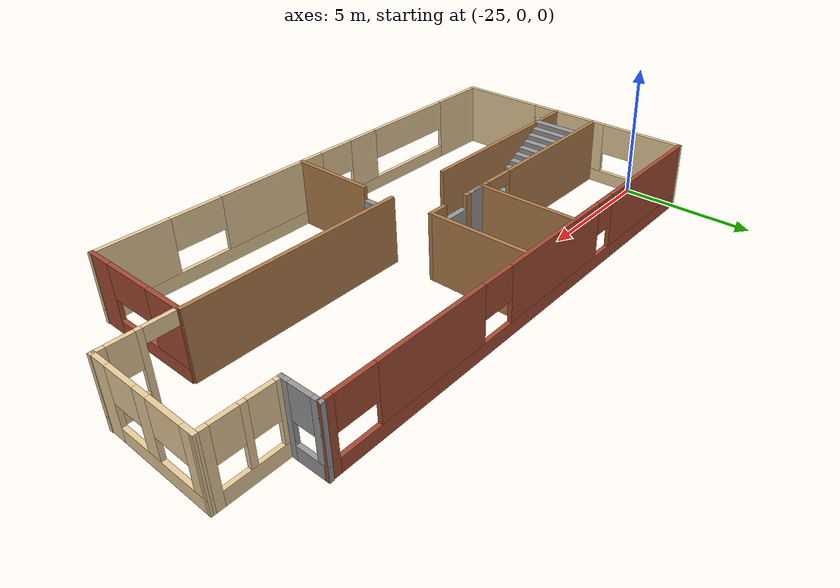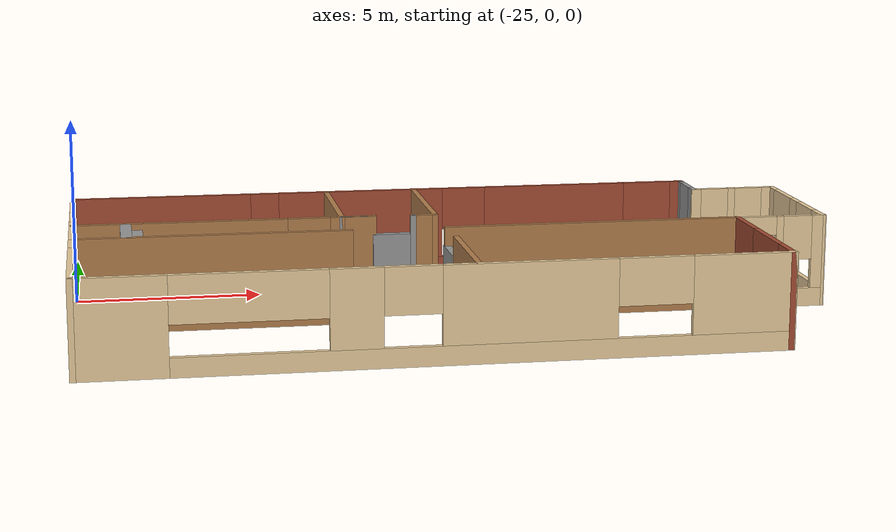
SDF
<?xml version='1.0'?>
<sdf version='1.6'>
  <model name='MyHouse'>
    <pose frame=''>-15.0547 -3.02519 0 0 -0 0</pose>
    <link name='Door_2'>
      <collision name='Door_2_Collision'>
        <geometry>
          <box>
            <size>1.24381 0.2 2</size>
          </box>
        </geometry>
        <pose frame=''>0 0 1 0 -0 0</pose>
      </collision>
      <visual name='Door_2_Visual'>
        <pose frame=''>0 0 1 0 -0 0</pose>
        <geometry>
          <box>
            <size>1.24381 0.2 2</size>
          </box>
        </geometry>
        <material>
          <script>
            <uri>file://media/materials/scripts/gazebo.material</uri>
            <name>Gazebo/Grey</name>
          </script>
        </material>
      </visual>
      <pose frame=''>-0.285292 -1.10145 0 0 0 -1.5689</pose>
    </link>
    <link name='Door_3'>
      <collision name='Door_3_Collision'>
        <geometry>
          <box>
            <size>1.03225 0.2 2</size>
          </box>
        </geometry>
        <pose frame=''>0 0 1 0 -0 0</pose>
      </collision>
      <visual name='Door_3_Visual'>
        <pose frame=''>0 0 1 0 -0 0</pose>
        <geometry>
          <box>
            <size>1.03225 0.2 2</size>
          </box>
        </geometry>
        <material>
          <script>
            <uri>file://media/materials/scripts/gazebo.material</uri>
            <name>Gazebo/Grey</name>
          </script>
        </material>
      </visual>
      <pose frame=''>-1.50547 1.19824 0 0 -0 0</pose>
    </link>
    <link name='Stairs_0'>
      <visual name='Stairs_0_Visual_0'>
        <pose frame=''>-4.48934 0.306384 0.083333 0 -0 -1.5708</pose>
        <geometry>
          <box>
            <size>1.71481 0.293154 0.166667</size>
          </box>
        </geometry>
        <material>
          <script>
            <uri>file://media/materials/scripts/gazebo.material</uri>
            <name>Gazebo/Grey</name>
          </script>
          <ambient>1 1 1 1</ambient>
        </material>
        <meta>
          <layer>0</layer>
        </meta>
      </visual>
      <collision name='Stairs_0_Collision_0'>
        <geometry>
          <box>
            <size>1.71481 0.293154 0.166667</size>
          </box>
        </geometry>
        <pose frame=''>-4.48934 0.306384 0.083333 0 -0 -1.5708</pose>
      </collision>
      <visual name='Stairs_0_Visual_1'>
        <pose frame=''>-4.78249 0.306384 0.25 0 -0 -1.5708</pose>
        <geometry>
          <box>
            <size>1.71481 0.293154 0.166667</size>
          </box>
        </geometry>
        <material>
          <script>
            <uri>file://media/materials/scripts/gazebo.material</uri>
            <name>Gazebo/Grey</name>
          </script>
          <ambient>1 1 1 1</ambient>
        </material>
        <meta>
          <layer>0</layer>
        </meta>
      </visual>
      <collision name='Stairs_0_Collision_1'>
        <geometry>
          <box>
            <size>1.71481 0.293154 0.166667</size>
          </box>
        </geometry>
        <pose frame=''>-4.78249 0.306384 0.25 0 -0 -1.5708</pose>
      </collision>
      <visual name='Stairs_0_Visual_2'>
        <pose frame=''>-5.07565 0.306384 0.416667 0 -0 -1.5708</pose>
        <geometry>
          <box>
            <size>1.71481 0.293154 0.166667</size>
          </box>
        </geometry>
        <material>
          <script>
            <uri>file://media/materials/scripts/gazebo.material</uri>
            <name>Gazebo/Grey</name>
          </script>
          <ambient>1 1 1 1</ambient>
        </material>
        <meta>
          <layer>0</layer>
        </meta>
      </visual>
      <collision name='Stairs_0_Collision_2'>
        <geometry>
          <box>
            <size>1.71481 0.293154 0.166667</size>
          </box>
        </geometry>
        <pose frame=''>-5.07565 0.306384 0.416667 0 -0 -1.5708</pose>
      </collision>
      <visual name='Stairs_0_Visual_3'>
        <pose frame=''>-5.36881 0.306384 0.583333 0 -0 -1.5708</pose>
        <geometry>
          <box>
            <size>1.71481 0.293154 0.166667</size>
          </box>
        </geometry>
        <material>
          <script>
            <uri>file://media/materials/scripts/gazebo.material</uri>
            <name>Gazebo/Grey</name>
          </script>
          <ambient>1 1 1 1</ambient>
        </material>
        <meta>
          <layer>0</layer>
        </meta>
      </visual>
      <collision name='Stairs_0_Collision_3'>
        <geometry>
          <box>
            <size>1.71481 0.293154 0.166667</size>
          </box>
        </geometry>
        <pose frame=''>-5.36881 0.306384 0.583333 0 -0 -1.5708</pose>
      </collision>
      <visual name='Stairs_0_Visual_4'>
        <pose frame=''>-5.66196 0.306384 0.75 0 -0 -1.5708</pose>
        <geometry>
          <box>
            <size>1.71481 0.293154 0.166667</size>
          </box>
        </geometry>
        <material>
          <script>
            <uri>file://media/materials/scripts/gazebo.material</uri>
            <name>Gazebo/Grey</name>
          </script>
          <ambient>1 1 1 1</ambient>
        </material>
        <meta>
          <layer>0</layer>
        </meta>
      </visual>
      <collision name='Stairs_0_Collision_4'>
        <geometry>
          <box>
            <size>1.71481 0.293154 0.166667</size>
          </box>
        </geometry>
        <pose frame=''>-5.66196 0.306384 0.75 0 -0 -1.5708</pose>
      </collision>
      <visual name='Stairs_0_Visual_5'>
        <pose frame=''>-5.95511 0.306384 0.916667 0 -0 -1.5708</pose>
        <geometry>
          <box>
            <size>1.71481 0.293154 0.166667</size>
          </box>
        </geometry>
        <material>
          <script>
            <uri>file://media/materials/scripts/gazebo.material</uri>
            <name>Gazebo/Grey</name>
          </script>
          <ambient>1 1 1 1</ambient>
        </material>
        <meta>
          <layer>0</layer>
        </meta>
      </visual>
      <collision name='Stairs_0_Collision_5'>
        <geometry>
          <box>
            <size>1.71481 0.293154 0.166667</size>
          </box>
        </geometry>
        <pose frame=''>-5.95511 0.306384 0.916667 0 -0 -1.5708</pose>
      </collision>
      <visual name='Stairs_0_Visual_6'>
        <pose frame=''>-6.24827 0.306384 1.08333 0 -0 -1.5708</pose>
        <geometry>
          <box>
            <size>1.71481 0.293154 0.166667</size>
          </box>
        </geometry>
        <material>
          <script>
            <uri>file://media/materials/scripts/gazebo.material</uri>
            <name>Gazebo/Grey</name>
          </script>
          <ambient>1 1 1 1</ambient>
        </material>
        <meta>
          <layer>0</layer>
        </meta>
      </visual>
      <collision name='Stairs_0_Collision_6'>
        <geometry>
          <box>
            <size>1.71481 0.293154 0.166667</size>
          </box>
        </geometry>
        <pose frame=''>-6.24827 0.306384 1.08333 0 -0 -1.5708</pose>
      </collision>
      <visual name='Stairs_0_Visual_7'>
        <pose frame=''>-6.54142 0.306384 1.25 0 -0 -1.5708</pose>
        <geometry>
          <box>
            <size>1.71481 0.293154 0.166667</size>
          </box>
        </geometry>
        <material>
          <script>
            <uri>file://media/materials/scripts/gazebo.material</uri>
            <name>Gazebo/Grey</name>
          </script>
          <ambient>1 1 1 1</ambient>
        </material>
        <meta>
          <layer>0</layer>
        </meta>
      </visual>
      <collision name='Stairs_0_Collision_7'>
        <geometry>
          <box>
            <size>1.71481 0.293154 0.166667</size>
          </box>
        </geometry>
        <pose frame=''>-6.54142 0.306384 1.25 0 -0 -1.5708</pose>
      </collision>
      <visual name='Stairs_0_Visual_8'>
        <pose frame=''>-6.83458 0.306384 1.41667 0 -0 -1.5708</pose>
        <geometry>
          <box>
            <size>1.71481 0.293154 0.166667</size>
          </box>
        </geometry>
        <material>
          <script>
            <uri>file://media/materials/scripts/gazebo.material</uri>
            <name>Gazebo/Grey</name>
          </script>
          <ambient>1 1 1 1</ambient>
        </material>
        <meta>
          <layer>0</layer>
        </meta>
      </visual>
      <collision name='Stairs_0_Collision_8'>
        <geometry>
          <box>
            <size>1.71481 0.293154 0.166667</size>
          </box>
        </geometry>
        <pose frame=''>-6.83458 0.306384 1.41667 0 -0 -1.5708</pose>
      </collision>
      <visual name='Stairs_0_Visual_9'>
        <pose frame=''>-7.12773 0.306384 1.58333 0 -0 -1.5708</pose>
        <geometry>
          <box>
            <size>1.71481 0.293154 0.166667</size>
          </box>
        </geometry>
        <material>
          <script>
            <uri>file://media/materials/scripts/gazebo.material</uri>
            <name>Gazebo/Grey</name>
          </script>
          <ambient>1 1 1 1</ambient>
        </material>
        <meta>
          <layer>0</layer>
        </meta>
      </visual>
      <collision name='Stairs_0_Collision_9'>
        <geometry>
          <box>
            <size>1.71481 0.293154 0.166667</size>
          </box>
        </geometry>
        <pose frame=''>-7.12773 0.306384 1.58333 0 -0 -1.5708</pose>
      </collision>
      <visual name='Stairs_0_Visual_10'>
        <pose frame=''>-7.42089 0.306384 1.75 0 -0 -1.5708</pose>
        <geometry>
          <box>
            <size>1.71481 0.293154 0.166667</size>
          </box>
        </geometry>
        <material>
          <script>
            <uri>file://media/materials/scripts/gazebo.material</uri>
            <name>Gazebo/Grey</name>
          </script>
          <ambient>1 1 1 1</ambient>
        </material>
        <meta>
          <layer>0</layer>
        </meta>
      </visual>
      <collision name='Stairs_0_Collision_10'>
        <geometry>
          <box>
            <size>1.71481 0.293154 0.166667</size>
          </box>
        </geometry>
        <pose frame=''>-7.42089 0.306384 1.75 0 -0 -1.5708</pose>
      </collision>
      <visual name='Stairs_0_Visual_11'>
        <pose frame=''>-7.71404 0.306384 1.91667 0 -0 -1.5708</pose>
        <geometry>
          <box>
            <size>1.71481 0.293154 0.166667</size>
          </box>
        </geometry>
        <material>
          <script>
            <uri>file://media/materials/scripts/gazebo.material</uri>
            <name>Gazebo/Grey</name>
          </script>
          <ambient>1 1 1 1</ambient>
        </material>
        <meta>
          <layer>0</layer>
        </meta>
      </visual>
      <collision name='Stairs_0_Collision_11'>
        <geometry>
          <box>
            <size>1.71481 0.293154 0.166667</size>
          </box>
        </geometry>
        <pose frame=''>-7.71404 0.306384 1.91667 0 -0 -1.5708</pose>
      </collision>
      <visual name='Stairs_0_Visual_12'>
        <pose frame=''>-8.00719 0.306384 2.08333 0 -0 -1.5708</pose>
        <geometry>
          <box>
            <size>1.71481 0.293154 0.166667</size>
          </box>
        </geometry>
        <material>
          <script>
            <uri>file://media/materials/scripts/gazebo.material</uri>
            <name>Gazebo/Grey</name>
          </script>
          <ambient>1 1 1 1</ambient>
        </material>
        <meta>
          <layer>0</layer>
        </meta>
      </visual>
      <collision name='Stairs_0_Collision_12'>
        <geometry>
          <box>
            <size>1.71481 0.293154 0.166667</size>
          </box>
        </geometry>
        <pose frame=''>-8.00719 0.306384 2.08333 0 -0 -1.5708</pose>
      </collision>
      <visual name='Stairs_0_Visual_13'>
        <pose frame=''>-8.30035 0.306384 2.25 0 -0 -1.5708</pose>
        <geometry>
          <box>
            <size>1.71481 0.293154 0.166667</size>
          </box>
        </geometry>
        <material>
          <script>
            <uri>file://media/materials/scripts/gazebo.material</uri>
            <name>Gazebo/Grey</name>
          </script>
          <ambient>1 1 1 1</ambient>
        </material>
        <meta>
          <layer>0</layer>
        </meta>
      </visual>
      <collision name='Stairs_0_Collision_13'>
        <geometry>
          <box>
            <size>1.71481 0.293154 0.166667</size>
          </box>
        </geometry>
        <pose frame=''>-8.30035 0.306384 2.25 0 -0 -1.5708</pose>
      </collision>
      <visual name='Stairs_0_Visual_14'>
        <pose frame=''>-8.5935 0.306384 2.41667 0 -0 -1.5708</pose>
        <geometry>
          <box>
            <size>1.71481 0.293154 0.166667</size>
          </box>
        </geometry>
        <material>
          <script>
            <uri>file://media/materials/scripts/gazebo.material</uri>
            <name>Gazebo/Grey</name>
          </script>
          <ambient>1 1 1 1</ambient>
        </material>
        <meta>
          <layer>0</layer>
        </meta>
      </visual>
      <collision name='Stairs_0_Collision_14'>
        <geometry>
          <box>
            <size>1.71481 0.293154 0.166667</size>
          </box>
        </geometry>
        <pose frame=''>-8.5935 0.306384 2.41667 0 -0 -1.5708</pose>
      </collision>
    </link>
    <link name='Wall_0'>
      <pose frame=''>9.97482 1.49013 0 0 -0 1.56597</pose>
      <visual name='Wall_0_Visual_0'>
        <pose frame=''>-1.79299 0 1.25 0 -0 0</pose>
        <geometry>
          <box>
            <size>0.734171 0.15 2.5</size>
          </box>
        </geometry>
        <material>
          <script>
            <uri>file://media/materials/scripts/gazebo.material</uri>
            <name>Gazebo/Grey</name>
          </script>
          <ambient>0.921569 0.807843 0.615686 1</ambient>
        </material>
        <meta>
          <layer>0</layer>
        </meta>
      </visual>
      <collision name='Wall_0_Collision_0'>
        <geometry>
          <box>
            <size>0.734171 0.15 2.5</size>
          </box>
        </geometry>
        <pose frame=''>-1.79299 0 1.25 0 -0 0</pose>
      </collision>
      <visual name='Wall_0_Visual_1'>
        <pose frame=''>0.367086 0 0.25 0 -0 0</pose>
        <geometry>
          <box>
            <size>3.58599 0.15 0.5</size>
          </box>
        </geometry>
        <material>
          <script>
            <uri>file://media/materials/scripts/gazebo.material</uri>
            <name>Gazebo/Grey</name>
          </script>
          <ambient>0.921569 0.807843 0.615686 1</ambient>
        </material>
        <meta>
          <layer>0</layer>
        </meta>
      </visual>
      <collision name='Wall_0_Collision_1'>
        <geometry>
          <box>
            <size>3.58599 0.15 0.5</size>
          </box>
        </geometry>
        <pose frame=''>0.367086 0 0.25 0 -0 0</pose>
      </collision>
      <visual name='Wall_0_Visual_2'>
        <pose frame=''>0.045283 0 1.5 0 -0 0</pose>
        <geometry>
          <box>
            <size>0.537844 0.15 2</size>
          </box>
        </geometry>
        <material>
          <script>
            <uri>file://media/materials/scripts/gazebo.material</uri>
            <name>Gazebo/Grey</name>
          </script>
          <ambient>0.921569 0.807843 0.615686 1</ambient>
        </material>
        <meta>
          <layer>0</layer>
        </meta>
      </visual>
      <collision name='Wall_0_Collision_2'>
        <geometry>
          <box>
            <size>0.537844 0.15 2</size>
          </box>
        </geometry>
        <pose frame=''>0.045283 0 1.5 0 -0 0</pose>
      </collision>
      <visual name='Wall_0_Visual_3'>
        <pose frame=''>1.90868 0 1.5 0 -0 0</pose>
        <geometry>
          <box>
            <size>0.502809 0.15 2</size>
          </box>
        </geometry>
        <material>
          <script>
            <uri>file://media/materials/scripts/gazebo.material</uri>
            <name>Gazebo/Grey</name>
          </script>
          <ambient>0.921569 0.807843 0.615686 1</ambient>
        </material>
        <meta>
          <layer>0</layer>
        </meta>
      </visual>
      <collision name='Wall_0_Collision_3'>
        <geometry>
          <box>
            <size>0.502809 0.15 2</size>
          </box>
        </geometry>
        <pose frame=''>1.90868 0 1.5 0 -0 0</pose>
      </collision>
      <visual name='Wall_0_Visual_4'>
        <pose frame=''>-0.824774 0 1.9 0 -0 0</pose>
        <geometry>
          <box>
            <size>1.20227 0.15 1.2</size>
          </box>
        </geometry>
        <material>
          <script>
            <uri>file://media/materials/scripts/gazebo.material</uri>
            <name>Gazebo/Grey</name>
          </script>
          <ambient>0.921569 0.807843 0.615686 1</ambient>
        </material>
        <meta>
          <layer>0</layer>
        </meta>
      </visual>
      <collision name='Wall_0_Collision_4'>
        <geometry>
          <box>
            <size>1.20227 0.15 1.2</size>
          </box>
        </geometry>
        <pose frame=''>-0.824774 0 1.9 0 -0 0</pose>
      </collision>
      <visual name='Wall_0_Visual_5'>
        <pose frame=''>0.985739 0 1.9 0 -0 0</pose>
        <geometry>
          <box>
            <size>1.34307 0.15 1.2</size>
          </box>
        </geometry>
        <material>
          <script>
            <uri>file://media/materials/scripts/gazebo.material</uri>
            <name>Gazebo/Grey</name>
          </script>
          <ambient>0.921569 0.807843 0.615686 1</ambient>
        </material>
        <meta>
          <layer>0</layer>
        </meta>
      </visual>
      <collision name='Wall_0_Collision_5'>
        <geometry>
          <box>
            <size>1.34307 0.15 1.2</size>
          </box>
        </geometry>
        <pose frame=''>0.985739 0 1.9 0 -0 0</pose>
      </collision>
    </link>
    <link name='Wall_1'>
      <pose frame=''>8.80988 3.57518 0 0 -0 3.14159</pose>
      <visual name='Wall_1_Visual_0'>
        <pose frame=''>-1.04463 0 1.25 0 -0 0</pose>
        <geometry>
          <box>
            <size>0.410747 0.15 2.5</size>
          </box>
        </geometry>
        <material>
          <script>
            <uri>file://media/materials/scripts/gazebo.material</uri>
            <name>Gazebo/Grey</name>
          </script>
          <ambient>0.921569 0.807843 0.615686 1</ambient>
        </material>
        <meta>
          <layer>0</layer>
        </meta>
      </visual>
      <collision name='Wall_1_Collision_0'>
        <geometry>
          <box>
            <size>0.410747 0.15 2.5</size>
          </box>
        </geometry>
        <pose frame=''>-1.04463 0 1.25 0 -0 0</pose>
      </collision>
      <visual name='Wall_1_Visual_1'>
        <pose frame=''>0.205374 0 0.25 0 -0 0</pose>
        <geometry>
          <box>
            <size>2.08925 0.15 0.5</size>
          </box>
        </geometry>
        <material>
          <script>
            <uri>file://media/materials/scripts/gazebo.material</uri>
            <name>Gazebo/Grey</name>
          </script>
          <ambient>0.921569 0.807843 0.615686 1</ambient>
        </material>
        <meta>
          <layer>0</layer>
        </meta>
      </visual>
      <collision name='Wall_1_Collision_1'>
        <geometry>
          <box>
            <size>2.08925 0.15 0.5</size>
          </box>
        </geometry>
        <pose frame=''>0.205374 0 0.25 0 -0 0</pose>
      </collision>
      <visual name='Wall_1_Visual_2'>
        <pose frame=''>0.063586 0 1.5 0 -0 0</pose>
        <geometry>
          <box>
            <size>0.205679 0.15 2</size>
          </box>
        </geometry>
        <material>
          <script>
            <uri>file://media/materials/scripts/gazebo.material</uri>
            <name>Gazebo/Grey</name>
          </script>
          <ambient>0.921569 0.807843 0.615686 1</ambient>
        </material>
        <meta>
          <layer>0</layer>
        </meta>
      </visual>
      <collision name='Wall_1_Collision_2'>
        <geometry>
          <box>
            <size>0.205679 0.15 2</size>
          </box>
        </geometry>
        <pose frame=''>0.063586 0 1.5 0 -0 0</pose>
      </collision>
      <visual name='Wall_1_Visual_3'>
        <pose frame=''>1.10821 0 1.5 0 -0 0</pose>
        <geometry>
          <box>
            <size>0.283574 0.15 2</size>
          </box>
        </geometry>
        <material>
          <script>
            <uri>file://media/materials/scripts/gazebo.material</uri>
            <name>Gazebo/Grey</name>
          </script>
          <ambient>0.921569 0.807843 0.615686 1</ambient>
        </material>
        <meta>
          <layer>0</layer>
        </meta>
      </visual>
      <collision name='Wall_1_Collision_3'>
        <geometry>
          <box>
            <size>0.283574 0.15 2</size>
          </box>
        </geometry>
        <pose frame=''>1.10821 0 1.5 0 -0 0</pose>
      </collision>
      <visual name='Wall_1_Visual_4'>
        <pose frame=''>-0.439253 0 1.9 0 -0 0</pose>
        <geometry>
          <box>
            <size>0.8 0.15 1.2</size>
          </box>
        </geometry>
        <material>
          <script>
            <uri>file://media/materials/scripts/gazebo.material</uri>
            <name>Gazebo/Grey</name>
          </script>
          <ambient>0.921569 0.807843 0.615686 1</ambient>
        </material>
        <meta>
          <layer>0</layer>
        </meta>
      </visual>
      <collision name='Wall_1_Collision_4'>
        <geometry>
          <box>
            <size>0.8 0.15 1.2</size>
          </box>
        </geometry>
        <pose frame=''>-0.439253 0 1.9 0 -0 0</pose>
      </collision>
      <visual name='Wall_1_Visual_5'>
        <pose frame=''>0.566426 0 1.9 0 -0 0</pose>
        <geometry>
          <box>
            <size>0.8 0.15 1.2</size>
          </box>
        </geometry>
        <material>
          <script>
            <uri>file://media/materials/scripts/gazebo.material</uri>
            <name>Gazebo/Grey</name>
          </script>
          <ambient>0.921569 0.807843 0.615686 1</ambient>
        </material>
        <meta>
          <layer>0</layer>
        </meta>
      </visual>
      <collision name='Wall_1_Collision_5'>
        <geometry>
          <box>
            <size>0.8 0.15 1.2</size>
          </box>
        </geometry>
        <pose frame=''>0.566426 0 1.9 0 -0 0</pose>
      </collision>
    </link>
    <link name='Wall_10'>
      <collision name='Wall_10_Collision'>
        <geometry>
          <box>
            <size>3.75 0.15 2.5</size>
          </box>
        </geometry>
        <pose frame=''>0 0 1.25 0 -0 0</pose>
      </collision>
      <visual name='Wall_10_Visual'>
        <pose frame=''>0 0 1.25 0 -0 0</pose>
        <geometry>
          <box>
            <size>3.75 0.15 2.5</size>
          </box>
        </geometry>
        <material>
          <script>
            <uri>file://media/materials/scripts/gazebo.material</uri>
            <name>Gazebo/Wood</name>
          </script>
          <ambient>0.921569 0.807843 0.615686 1</ambient>
        </material>
        <meta>
          <layer>0</layer>
        </meta>
      </visual>
      <pose frame=''>-2.85199 3.02591 0 0 -0 1.5708</pose>
    </link>
    <link name='Wall_11'>
      <collision name='Wall_11_Collision'>
        <geometry>
          <box>
            <size>0.15 0.15 2.5</size>
          </box>
        </geometry>
        <pose frame=''>0 0 1.25 0 -0 0</pose>
      </collision>
      <visual name='Wall_11_Visual'>
        <pose frame=''>0 0 1.25 0 -0 0</pose>
        <geometry>
          <box>
            <size>0.15 0.15 2.5</size>
          </box>
        </geometry>
        <material>
          <script>
            <uri>file://media/materials/scripts/gazebo.material</uri>
            <name>Gazebo/Grey</name>
          </script>
          <ambient>1 1 1 1</ambient>
        </material>
        <meta>
          <layer>0</layer>
        </meta>
      </visual>
      <pose frame=''>-2.85199 4.82591 0 0 -0 0</pose>
    </link>
    <link name='Wall_12'>
      <collision name='Wall_12_Collision'>
        <geometry>
          <box>
            <size>0.15 0.15 2.5</size>
          </box>
        </geometry>
        <pose frame=''>0 0 1.25 0 -0 0</pose>
      </collision>
      <visual name='Wall_12_Visual'>
        <pose frame=''>0 0 1.25 0 -0 0</pose>
        <geometry>
          <box>
            <size>0.15 0.15 2.5</size>
          </box>
        </geometry>
        <material>
          <script>
            <uri>file://media/materials/scripts/gazebo.material</uri>
            <name>Gazebo/Grey</name>
          </script>
          <ambient>1 1 1 1</ambient>
        </material>
        <meta>
          <layer>0</layer>
        </meta>
      </visual>
      <pose frame=''>-2.85199 4.82591 0 0 -0 0</pose>
    </link>
    <link name='Wall_14'>
      <collision name='Wall_14_Collision'>
        <geometry>
          <box>
            <size>3.75 0.15 2.5</size>
          </box>
        </geometry>
        <pose frame=''>0 0 1.25 0 -0 0</pose>
      </collision>
      <visual name='Wall_14_Visual'>
        <pose frame=''>0 0 1.25 0 -0 0</pose>
        <geometry>
          <box>
            <size>3.75 0.15 2.5</size>
          </box>
        </geometry>
        <material>
          <script>
            <uri>file://media/materials/scripts/gazebo.material</uri>
            <name>Gazebo/Wood</name>
          </script>
          <ambient>0.921569 0.807843 0.615686 1</ambient>
        </material>
        <meta>
          <layer>0</layer>
        </meta>
      </visual>
      <pose frame=''>-0.334237 2.96943 0 0 0 -1.5708</pose>
    </link>
    <link name='Wall_16'>
      <collision name='Wall_16_Collision'>
        <geometry>
          <box>
            <size>7.25 0.15 2.5</size>
          </box>
        </geometry>
        <pose frame=''>0 0 1.25 0 -0 0</pose>
      </collision>
      <visual name='Wall_16_Visual'>
        <pose frame=''>0 0 1.25 0 -0 0</pose>
        <geometry>
          <box>
            <size>7.25 0.15 2.5</size>
          </box>
        </geometry>
        <material>
          <script>
            <uri>file://media/materials/scripts/gazebo.material</uri>
            <name>Gazebo/Wood</name>
          </script>
          <ambient>0.921569 0.807843 0.615686 1</ambient>
        </material>
        <meta>
          <layer>0</layer>
        </meta>
      </visual>
      <pose frame=''>-6.40199 -0.51773 0 0 -0 0</pose>
    </link>
    <link name='Wall_19'>
      <collision name='Wall_19_Collision'>
        <geometry>
          <box>
            <size>8 0.15 2.5</size>
          </box>
        </geometry>
        <pose frame=''>0 0 1.25 0 -0 0</pose>
      </collision>
      <visual name='Wall_19_Visual'>
        <pose frame=''>0 0 1.25 0 -0 0</pose>
        <geometry>
          <box>
            <size>8 0.15 2.5</size>
          </box>
        </geometry>
        <material>
          <script>
            <uri>file://media/materials/scripts/gazebo.material</uri>
            <name>Gazebo/Wood</name>
          </script>
          <ambient>0.921569 0.807843 0.615686 1</ambient>
        </material>
        <meta>
          <layer>0</layer>
        </meta>
      </visual>
      <pose frame=''>3.62989 -0.537843 0 0 -0 0</pose>
    </link>
    <link name='Wall_2'>
      <pose frame=''>7.63488 4.25019 0 0 -0 1.5708</pose>
      <visual name='Wall_2_Visual_0'>
        <pose frame=''>-0.572954 0 1.25 0 -0 0</pose>
        <geometry>
          <box>
            <size>0.354091 0.15 2.5</size>
          </box>
        </geometry>
        <material>
          <script>
            <uri>file://media/materials/scripts/gazebo.material</uri>
            <name>Gazebo/Grey</name>
          </script>
          <ambient>1 1 1 1</ambient>
        </material>
        <meta>
          <layer>0</layer>
        </meta>
      </visual>
      <collision name='Wall_2_Collision_0'>
        <geometry>
          <box>
            <size>0.354091 0.15 2.5</size>
          </box>
        </geometry>
        <pose frame=''>-0.572954 0 1.25 0 -0 0</pose>
      </collision>
      <visual name='Wall_2_Visual_1'>
        <pose frame=''>0.177046 0 0.25 0 -0 0</pose>
        <geometry>
          <box>
            <size>1.14591 0.15 0.5</size>
          </box>
        </geometry>
        <material>
          <script>
            <uri>file://media/materials/scripts/gazebo.material</uri>
            <name>Gazebo/Grey</name>
          </script>
          <ambient>1 1 1 1</ambient>
        </material>
        <meta>
          <layer>0</layer>
        </meta>
      </visual>
      <collision name='Wall_2_Collision_1'>
        <geometry>
          <box>
            <size>1.14591 0.15 0.5</size>
          </box>
        </geometry>
        <pose frame=''>0.177046 0 0.25 0 -0 0</pose>
      </collision>
      <visual name='Wall_2_Visual_2'>
        <pose frame=''>0.577046 0 1.5 0 -0 0</pose>
        <geometry>
          <box>
            <size>0.345909 0.15 2</size>
          </box>
        </geometry>
        <material>
          <script>
            <uri>file://media/materials/scripts/gazebo.material</uri>
            <name>Gazebo/Grey</name>
          </script>
          <ambient>1 1 1 1</ambient>
        </material>
        <meta>
          <layer>0</layer>
        </meta>
      </visual>
      <collision name='Wall_2_Collision_2'>
        <geometry>
          <box>
            <size>0.345909 0.15 2</size>
          </box>
        </geometry>
        <pose frame=''>0.577046 0 1.5 0 -0 0</pose>
      </collision>
      <visual name='Wall_2_Visual_3'>
        <pose frame=''>0.004091 0 1.9 0 -0 0</pose>
        <geometry>
          <box>
            <size>0.8 0.15 1.2</size>
          </box>
        </geometry>
        <material>
          <script>
            <uri>file://media/materials/scripts/gazebo.material</uri>
            <name>Gazebo/Grey</name>
          </script>
          <ambient>1 1 1 1</ambient>
        </material>
        <meta>
          <layer>0</layer>
        </meta>
      </visual>
      <collision name='Wall_2_Collision_3'>
        <geometry>
          <box>
            <size>0.8 0.15 1.2</size>
          </box>
        </geometry>
        <pose frame=''>0.004091 0 1.9 0 -0 0</pose>
      </collision>
    </link>
    <link name='Wall_21'>
      <collision name='Wall_21_Collision'>
        <geometry>
          <box>
            <size>3.25 0.15 2.5</size>
          </box>
        </geometry>
        <pose frame=''>0 0 1.25 0 -0 0</pose>
      </collision>
      <visual name='Wall_21_Visual'>
        <pose frame=''>0 0 1.25 0 -0 0</pose>
        <geometry>
          <box>
            <size>3.25 0.15 2.5</size>
          </box>
        </geometry>
        <material>
          <script>
            <uri>file://media/materials/scripts/gazebo.material</uri>
            <name>Gazebo/Wood</name>
          </script>
          <ambient>0.921569 0.807843 0.615686 1</ambient>
        </material>
        <meta>
          <layer>0</layer>
        </meta>
      </visual>
      <pose frame=''>-0.276393 -3.34867 0 0 -0 1.5708</pose>
    </link>
    <link name='Wall_23'>
      <collision name='Wall_23_Collision'>
        <geometry>
          <box>
            <size>0.775873 0.15 2.5</size>
          </box>
        </geometry>
        <pose frame=''>0 0 1.25 0 -0 0</pose>
      </collision>
      <visual name='Wall_23_Visual'>
        <pose frame=''>0 0 1.25 0 -0 0</pose>
        <geometry>
          <box>
            <size>0.775873 0.15 2.5</size>
          </box>
        </geometry>
        <material>
          <script>
            <uri>file://media/materials/scripts/gazebo.material</uri>
            <name>Gazebo/Grey</name>
          </script>
          <ambient>1 1 1 1</ambient>
        </material>
        <meta>
          <layer>0</layer>
        </meta>
      </visual>
      <pose frame=''>-2.53911 1.23191 0 0 0 -3.12242</pose>
    </link>
    <link name='Wall_24'>
      <collision name='Wall_24_Collision'>
        <geometry>
          <box>
            <size>1 0.15 2.5</size>
          </box>
        </geometry>
        <pose frame=''>0 0 1.25 0 -0 0</pose>
      </collision>
      <visual name='Wall_24_Visual'>
        <pose frame=''>0 0 1.25 0 -0 0</pose>
        <geometry>
          <box>
            <size>1 0.15 2.5</size>
          </box>
        </geometry>
        <material>
          <script>
            <uri>file://media/materials/scripts/gazebo.material</uri>
            <name>Gazebo/Wood</name>
          </script>
          <ambient>0.921569 0.807843 0.615686 1</ambient>
        </material>
        <meta>
          <layer>0</layer>
        </meta>
      </visual>
      <pose frame=''>-2.42699 1.22591 0 0 -0 0</pose>
    </link>
    <link name='Wall_26'>
      <collision name='Wall_26_Collision'>
        <geometry>
          <box>
            <size>0.75 0.15 2.5</size>
          </box>
        </geometry>
        <pose frame=''>0 0 1.25 0 -0 0</pose>
      </collision>
      <visual name='Wall_26_Visual'>
        <pose frame=''>0 0 1.25 0 -0 0</pose>
        <geometry>
          <box>
            <size>0.75 0.15 2.5</size>
          </box>
        </geometry>
        <material>
          <script>
            <uri>file://media/materials/scripts/gazebo.material</uri>
            <name>Gazebo/Wood</name>
          </script>
          <ambient>0.921569 0.807843 0.615686 1</ambient>
        </material>
        <meta>
          <layer>0</layer>
        </meta>
      </visual>
      <pose frame=''>-0.634237 1.16944 0 0 -0 3.14159</pose>
    </link>
    <link name='Wall_27'>
      <collision name='Wall_27_Collision'>
        <geometry>
          <box>
            <size>0.15 0.15 2.5</size>
          </box>
        </geometry>
        <pose frame=''>0 0 1.25 0 -0 0</pose>
      </collision>
      <visual name='Wall_27_Visual'>
        <pose frame=''>0 0 1.25 0 -0 0</pose>
        <geometry>
          <box>
            <size>0.15 0.15 2.5</size>
          </box>
        </geometry>
        <material>
          <script>
            <uri>file://media/materials/scripts/gazebo.material</uri>
            <name>Gazebo/Grey</name>
          </script>
          <ambient>1 1 1 1</ambient>
        </material>
        <meta>
          <layer>0</layer>
        </meta>
      </visual>
      <pose frame=''>-0.934237 1.16944 0 0 -0 0</pose>
    </link>
    <link name='Wall_28'>
      <collision name='Wall_28_Collision'>
        <geometry>
          <box>
            <size>0.15 0.15 2.5</size>
          </box>
        </geometry>
        <pose frame=''>0 0 1.25 0 -0 0</pose>
      </collision>
      <visual name='Wall_28_Visual'>
        <pose frame=''>0 0 1.25 0 -0 0</pose>
        <geometry>
          <box>
            <size>0.15 0.15 2.5</size>
          </box>
        </geometry>
        <material>
          <script>
            <uri>file://media/materials/scripts/gazebo.material</uri>
            <name>Gazebo/Grey</name>
          </script>
          <ambient>1 1 1 1</ambient>
        </material>
        <meta>
          <layer>0</layer>
        </meta>
      </visual>
      <pose frame=''>-0.934237 1.16944 0 0 -0 0</pose>
    </link>
    <link name='Wall_3'>
      <pose frame=''>-1.16512 4.90507 0 0 -0 3.14159</pose>
      <visual name='Wall_3_Visual_0'>
        <pose frame=''>-8.66798 0 1.25 0 -0 0</pose>
        <geometry>
          <box>
            <size>0.414035 0.15 2.5</size>
          </box>
        </geometry>
        <material>
          <script>
            <uri>file://media/materials/scripts/gazebo.material</uri>
            <name>Gazebo/Bricks</name>
          </script>
          <ambient>0.921569 0.807843 0.615686 1</ambient>
        </material>
        <meta>
          <layer>0</layer>
        </meta>
      </visual>
      <collision name='Wall_3_Collision_0'>
        <geometry>
          <box>
            <size>0.414035 0.15 2.5</size>
          </box>
        </geometry>
        <pose frame=''>-8.66798 0 1.25 0 -0 0</pose>
      </collision>
      <visual name='Wall_3_Visual_1'>
        <pose frame=''>0.207018 0 0.25 0 -0 0</pose>
        <geometry>
          <box>
            <size>17.336 0.15 0.5</size>
          </box>
        </geometry>
        <material>
          <script>
            <uri>file://media/materials/scripts/gazebo.material</uri>
            <name>Gazebo/Bricks</name>
          </script>
          <ambient>0.921569 0.807843 0.615686 1</ambient>
        </material>
        <meta>
          <layer>0</layer>
        </meta>
      </visual>
      <collision name='Wall_3_Collision_1'>
        <geometry>
          <box>
            <size>17.336 0.15 0.5</size>
          </box>
        </geometry>
        <pose frame=''>0.207018 0 0.25 0 -0 0</pose>
      </collision>
      <visual name='Wall_3_Visual_2'>
        <pose frame=''>-4.98359 0 1.5 0 -0 0</pose>
        <geometry>
          <box>
            <size>4.14794 0.15 2</size>
          </box>
        </geometry>
        <material>
          <script>
            <uri>file://media/materials/scripts/gazebo.material</uri>
            <name>Gazebo/Bricks</name>
          </script>
          <ambient>0.921569 0.807843 0.615686 1</ambient>
        </material>
        <meta>
          <layer>0</layer>
        </meta>
      </visual>
      <collision name='Wall_3_Collision_2'>
        <geometry>
          <box>
            <size>4.14794 0.15 2</size>
          </box>
        </geometry>
        <pose frame=''>-4.98359 0 1.5 0 -0 0</pose>
      </collision>
      <visual name='Wall_3_Visual_3'>
        <pose frame=''>0.693082 0 1.5 0 -0 0</pose>
        <geometry>
          <box>
            <size>4.7204 0.15 2</size>
          </box>
        </geometry>
        <material>
          <script>
            <uri>file://media/materials/scripts/gazebo.material</uri>
            <name>Gazebo/Bricks</name>
          </script>
          <ambient>0.921569 0.807843 0.615686 1</ambient>
        </material>
        <meta>
          <layer>0</layer>
        </meta>
      </visual>
      <collision name='Wall_3_Collision_3'>
        <geometry>
          <box>
            <size>4.7204 0.15 2</size>
          </box>
        </geometry>
        <pose frame=''>0.693082 0 1.5 0 -0 0</pose>
      </collision>
      <visual name='Wall_3_Visual_4'>
        <pose frame=''>6.36414 0 1.5 0 -0 0</pose>
        <geometry>
          <box>
            <size>5.02172 0.15 2</size>
          </box>
        </geometry>
        <material>
          <script>
            <uri>file://media/materials/scripts/gazebo.material</uri>
            <name>Gazebo/Bricks</name>
          </script>
          <ambient>0.921569 0.807843 0.615686 1</ambient>
        </material>
        <meta>
          <layer>0</layer>
        </meta>
      </visual>
      <collision name='Wall_3_Collision_4'>
        <geometry>
          <box>
            <size>5.02172 0.15 2</size>
          </box>
        </geometry>
        <pose frame=''>6.36414 0 1.5 0 -0 0</pose>
      </collision>
      <visual name='Wall_3_Visual_5'>
        <pose frame=''>-7.75926 0 1.9 0 -0 0</pose>
        <geometry>
          <box>
            <size>1.40341 0.15 1.2</size>
          </box>
        </geometry>
        <material>
          <script>
            <uri>file://media/materials/scripts/gazebo.material</uri>
            <name>Gazebo/Bricks</name>
          </script>
          <ambient>0.921569 0.807843 0.615686 1</ambient>
        </material>
        <meta>
          <layer>0</layer>
        </meta>
      </visual>
      <collision name='Wall_3_Collision_5'>
        <geometry>
          <box>
            <size>1.40341 0.15 1.2</size>
          </box>
        </geometry>
        <pose frame=''>-7.75926 0 1.9 0 -0 0</pose>
      </collision>
      <visual name='Wall_3_Visual_6'>
        <pose frame=''>-2.28837 0 1.9 0 -0 0</pose>
        <geometry>
          <box>
            <size>1.2425 0.15 1.2</size>
          </box>
        </geometry>
        <material>
          <script>
            <uri>file://media/materials/scripts/gazebo.material</uri>
            <name>Gazebo/Bricks</name>
          </script>
          <ambient>0.921569 0.807843 0.615686 1</ambient>
        </material>
        <meta>
          <layer>0</layer>
        </meta>
      </visual>
      <collision name='Wall_3_Collision_6'>
        <geometry>
          <box>
            <size>1.2425 0.15 1.2</size>
          </box>
        </geometry>
        <pose frame=''>-2.28837 0 1.9 0 -0 0</pose>
      </collision>
      <visual name='Wall_3_Visual_7'>
        <pose frame=''>3.45328 0 1.9 0 -0 0</pose>
        <geometry>
          <box>
            <size>0.8 0.15 1.2</size>
          </box>
        </geometry>
        <material>
          <script>
            <uri>file://media/materials/scripts/gazebo.material</uri>
            <name>Gazebo/Bricks</name>
          </script>
          <ambient>0.921569 0.807843 0.615686 1</ambient>
        </material>
        <meta>
          <layer>0</layer>
        </meta>
      </visual>
      <collision name='Wall_3_Collision_7'>
        <geometry>
          <box>
            <size>0.8 0.15 1.2</size>
          </box>
        </geometry>
        <pose frame=''>3.45328 0 1.9 0 -0 0</pose>
      </collision>
    </link>
    <link name='Wall_4'>
      <pose frame=''>-9.98524 -0.009872 0 0 0 -1.5708</pose>
      <visual name='Wall_4_Visual_0'>
        <pose frame=''>-4.01522 0 1.25 0 -0 0</pose>
        <geometry>
          <box>
            <size>1.9502 0.15 2.5</size>
          </box>
        </geometry>
        <material>
          <script>
            <uri>file://media/materials/scripts/gazebo.material</uri>
            <name>Gazebo/Grey</name>
          </script>
          <ambient>0.921569 0.807843 0.615686 1</ambient>
        </material>
        <meta>
          <layer>0</layer>
        </meta>
      </visual>
      <collision name='Wall_4_Collision_0'>
        <geometry>
          <box>
            <size>1.9502 0.15 2.5</size>
          </box>
        </geometry>
        <pose frame=''>-4.01522 0 1.25 0 -0 0</pose>
      </collision>
      <visual name='Wall_4_Visual_1'>
        <pose frame=''>3.26014 0 1.25 0 -0 0</pose>
        <geometry>
          <box>
            <size>3.46034 0.15 2.5</size>
          </box>
        </geometry>
        <material>
          <script>
            <uri>file://media/materials/scripts/gazebo.material</uri>
            <name>Gazebo/Grey</name>
          </script>
          <ambient>0.921569 0.807843 0.615686 1</ambient>
        </material>
        <meta>
          <layer>0</layer>
        </meta>
      </visual>
      <collision name='Wall_4_Collision_1'>
        <geometry>
          <box>
            <size>3.46034 0.15 2.5</size>
          </box>
        </geometry>
        <pose frame=''>3.26014 0 1.25 0 -0 0</pose>
      </collision>
      <visual name='Wall_4_Visual_2'>
        <pose frame=''>-1.23131 0 0.25 0 -0 0</pose>
        <geometry>
          <box>
            <size>3.61762 0.15 0.5</size>
          </box>
        </geometry>
        <material>
          <script>
            <uri>file://media/materials/scripts/gazebo.material</uri>
            <name>Gazebo/Grey</name>
          </script>
          <ambient>0.921569 0.807843 0.615686 1</ambient>
        </material>
        <meta>
          <layer>0</layer>
        </meta>
      </visual>
      <collision name='Wall_4_Collision_2'>
        <geometry>
          <box>
            <size>3.61762 0.15 0.5</size>
          </box>
        </geometry>
        <pose frame=''>-1.23131 0 0.25 0 -0 0</pose>
      </collision>
      <visual name='Wall_4_Visual_3'>
        <pose frame=''>-0.579889 0 1.5 0 -0 0</pose>
        <geometry>
          <box>
            <size>2.31478 0.15 2</size>
          </box>
        </geometry>
        <material>
          <script>
            <uri>file://media/materials/scripts/gazebo.material</uri>
            <name>Gazebo/Grey</name>
          </script>
          <ambient>0.921569 0.807843 0.615686 1</ambient>
        </material>
        <meta>
          <layer>0</layer>
        </meta>
      </visual>
      <collision name='Wall_4_Collision_3'>
        <geometry>
          <box>
            <size>2.31478 0.15 2</size>
          </box>
        </geometry>
        <pose frame=''>-0.579889 0 1.5 0 -0 0</pose>
      </collision>
      <visual name='Wall_4_Visual_4'>
        <pose frame=''>-2.3887 0 1.9 0 -0 0</pose>
        <geometry>
          <box>
            <size>1.30284 0.15 1.2</size>
          </box>
        </geometry>
        <material>
          <script>
            <uri>file://media/materials/scripts/gazebo.material</uri>
            <name>Gazebo/Grey</name>
          </script>
          <ambient>0.921569 0.807843 0.615686 1</ambient>
        </material>
        <meta>
          <layer>0</layer>
        </meta>
      </visual>
      <collision name='Wall_4_Collision_4'>
        <geometry>
          <box>
            <size>1.30284 0.15 1.2</size>
          </box>
        </geometry>
        <pose frame=''>-2.3887 0 1.9 0 -0 0</pose>
      </collision>
      <visual name='Wall_4_Visual_5'>
        <pose frame=''>1.05374 0 2.25 0 -0 0</pose>
        <geometry>
          <box>
            <size>0.95247 0.15 0.5</size>
          </box>
        </geometry>
        <material>
          <script>
            <uri>file://media/materials/scripts/gazebo.material</uri>
            <name>Gazebo/Grey</name>
          </script>
          <ambient>0.921569 0.807843 0.615686 1</ambient>
        </material>
        <meta>
          <layer>0</layer>
        </meta>
      </visual>
      <collision name='Wall_4_Collision_5'>
        <geometry>
          <box>
            <size>0.95247 0.15 0.5</size>
          </box>
        </geometry>
        <pose frame=''>1.05374 0 2.25 0 -0 0</pose>
      </collision>
    </link>
    <link name='Wall_5'>
      <pose frame=''>-1.16512 -4.92481 0 0 -0 0</pose>
      <visual name='Wall_5_Visual_0'>
        <pose frame=''>-7.71716 0 1.25 0 -0 0</pose>
        <geometry>
          <box>
            <size>2.31567 0.15 2.5</size>
          </box>
        </geometry>
        <material>
          <script>
            <uri>file://media/materials/scripts/gazebo.material</uri>
            <name>Gazebo/Grey</name>
          </script>
          <ambient>0.921569 0.807843 0.615686 1</ambient>
        </material>
        <meta>
          <layer>0</layer>
        </meta>
      </visual>
      <collision name='Wall_5_Collision_0'>
        <geometry>
          <box>
            <size>2.31567 0.15 2.5</size>
          </box>
        </geometry>
        <pose frame=''>-7.71716 0 1.25 0 -0 0</pose>
      </collision>
      <visual name='Wall_5_Visual_1'>
        <pose frame=''>1.15783 0 0.25 0 -0 0</pose>
        <geometry>
          <box>
            <size>15.4343 0.15 0.5</size>
          </box>
        </geometry>
        <material>
          <script>
            <uri>file://media/materials/scripts/gazebo.material</uri>
            <name>Gazebo/Grey</name>
          </script>
          <ambient>0.921569 0.807843 0.615686 1</ambient>
        </material>
        <meta>
          <layer>0</layer>
        </meta>
      </visual>
      <collision name='Wall_5_Collision_1'>
        <geometry>
          <box>
            <size>15.4343 0.15 0.5</size>
          </box>
        </geometry>
        <pose frame=''>1.15783 0 0.25 0 -0 0</pose>
      </collision>
      <visual name='Wall_5_Visual_2'>
        <pose frame=''>-2.08633 0 1.5 0 -0 0</pose>
        <geometry>
          <box>
            <size>1.31193 0.15 2</size>
          </box>
        </geometry>
        <material>
          <script>
            <uri>file://media/materials/scripts/gazebo.material</uri>
            <name>Gazebo/Grey</name>
          </script>
          <ambient>0.921569 0.807843 0.615686 1</ambient>
        </material>
        <meta>
          <layer>0</layer>
        </meta>
      </visual>
      <collision name='Wall_5_Collision_2'>
        <geometry>
          <box>
            <size>1.31193 0.15 2</size>
          </box>
        </geometry>
        <pose frame=''>-2.08633 0 1.5 0 -0 0</pose>
      </collision>
      <visual name='Wall_5_Visual_3'>
        <pose frame=''>2.16769 0 1.5 0 -0 0</pose>
        <geometry>
          <box>
            <size>4.34907 0.15 2</size>
          </box>
        </geometry>
        <material>
          <script>
            <uri>file://media/materials/scripts/gazebo.material</uri>
            <name>Gazebo/Grey</name>
          </script>
          <ambient>0.921569 0.807843 0.615686 1</ambient>
        </material>
        <meta>
          <layer>0</layer>
        </meta>
      </visual>
      <collision name='Wall_5_Collision_3'>
        <geometry>
          <box>
            <size>4.34907 0.15 2</size>
          </box>
        </geometry>
        <pose frame=''>2.16769 0 1.5 0 -0 0</pose>
      </collision>
      <visual name='Wall_5_Visual_4'>
        <pose frame=''>7.55168 0 1.5 0 -0 0</pose>
        <geometry>
          <box>
            <size>2.64664 0.15 2</size>
          </box>
        </geometry>
        <material>
          <script>
            <uri>file://media/materials/scripts/gazebo.material</uri>
            <name>Gazebo/Grey</name>
          </script>
          <ambient>0.921569 0.807843 0.615686 1</ambient>
        </material>
        <meta>
          <layer>0</layer>
        </meta>
      </visual>
      <collision name='Wall_5_Collision_4'>
        <geometry>
          <box>
            <size>2.64664 0.15 2</size>
          </box>
        </geometry>
        <pose frame=''>7.55168 0 1.5 0 -0 0</pose>
      </collision>
      <visual name='Wall_5_Visual_5'>
        <pose frame=''>-4.65081 0 1.9 0 -0 0</pose>
        <geometry>
          <box>
            <size>3.81704 0.15 1.2</size>
          </box>
        </geometry>
        <material>
          <script>
            <uri>file://media/materials/scripts/gazebo.material</uri>
            <name>Gazebo/Grey</name>
          </script>
          <ambient>0.921569 0.807843 0.615686 1</ambient>
        </material>
        <meta>
          <layer>0</layer>
        </meta>
      </visual>
      <collision name='Wall_5_Collision_5'>
        <geometry>
          <box>
            <size>3.81704 0.15 1.2</size>
          </box>
        </geometry>
        <pose frame=''>-4.65081 0 1.9 0 -0 0</pose>
      </collision>
      <visual name='Wall_5_Visual_6'>
        <pose frame=''>-0.718609 0 1.9 0 -0 0</pose>
        <geometry>
          <box>
            <size>1.42352 0.15 1.2</size>
          </box>
        </geometry>
        <material>
          <script>
            <uri>file://media/materials/scripts/gazebo.material</uri>
            <name>Gazebo/Grey</name>
          </script>
          <ambient>0.921569 0.807843 0.615686 1</ambient>
        </material>
        <meta>
          <layer>0</layer>
        </meta>
      </visual>
      <collision name='Wall_5_Collision_6'>
        <geometry>
          <box>
            <size>1.42352 0.15 1.2</size>
          </box>
        </geometry>
        <pose frame=''>-0.718609 0 1.9 0 -0 0</pose>
      </collision>
      <visual name='Wall_5_Visual_7'>
        <pose frame=''>5.28529 0 1.9 0 -0 0</pose>
        <geometry>
          <box>
            <size>1.88613 0.15 1.2</size>
          </box>
        </geometry>
        <material>
          <script>
            <uri>file://media/materials/scripts/gazebo.material</uri>
            <name>Gazebo/Grey</name>
          </script>
          <ambient>0.921569 0.807843 0.615686 1</ambient>
        </material>
        <meta>
          <layer>0</layer>
        </meta>
      </visual>
      <collision name='Wall_5_Collision_7'>
        <geometry>
          <box>
            <size>1.88613 0.15 1.2</size>
          </box>
        </geometry>
        <pose frame=''>5.28529 0 1.9 0 -0 0</pose>
      </collision>
    </link>
    <link name='Wall_6'>
      <pose frame=''>7.61476 -2.75987 0 0 -0 1.5708</pose>
      <visual name='Wall_6_Visual_0'>
        <pose frame=''>-1.72899 0 1.25 0 -0 0</pose>
        <geometry>
          <box>
            <size>1.02191 0.15 2.5</size>
          </box>
        </geometry>
        <material>
          <script>
            <uri>file://media/materials/scripts/gazebo.material</uri>
            <name>Gazebo/Bricks</name>
          </script>
          <ambient>0.921569 0.807843 0.615686 1</ambient>
        </material>
        <meta>
          <layer>0</layer>
        </meta>
      </visual>
      <collision name='Wall_6_Collision_0'>
        <geometry>
          <box>
            <size>1.02191 0.15 2.5</size>
          </box>
        </geometry>
        <pose frame=''>-1.72899 0 1.25 0 -0 0</pose>
      </collision>
      <visual name='Wall_6_Visual_1'>
        <pose frame=''>0.510955 0 0.25 0 -0 0</pose>
        <geometry>
          <box>
            <size>3.45798 0.15 0.5</size>
          </box>
        </geometry>
        <material>
          <script>
            <uri>file://media/materials/scripts/gazebo.material</uri>
            <name>Gazebo/Bricks</name>
          </script>
          <ambient>0.921569 0.807843 0.615686 1</ambient>
        </material>
        <meta>
          <layer>0</layer>
        </meta>
      </visual>
      <collision name='Wall_6_Collision_1'>
        <geometry>
          <box>
            <size>3.45798 0.15 0.5</size>
          </box>
        </geometry>
        <pose frame=''>0.510955 0 0.25 0 -0 0</pose>
      </collision>
      <visual name='Wall_6_Visual_2'>
        <pose frame=''>1.47413 0 1.5 0 -0 0</pose>
        <geometry>
          <box>
            <size>1.53163 0.15 2</size>
          </box>
        </geometry>
        <material>
          <script>
            <uri>file://media/materials/scripts/gazebo.material</uri>
            <name>Gazebo/Bricks</name>
          </script>
          <ambient>0.921569 0.807843 0.615686 1</ambient>
        </material>
        <meta>
          <layer>0</layer>
        </meta>
      </visual>
      <collision name='Wall_6_Collision_2'>
        <geometry>
          <box>
            <size>1.53163 0.15 2</size>
          </box>
        </geometry>
        <pose frame=''>1.47413 0 1.5 0 -0 0</pose>
      </collision>
      <visual name='Wall_6_Visual_3'>
        <pose frame=''>-0.254859 0 1.9 0 -0 0</pose>
        <geometry>
          <box>
            <size>1.92635 0.15 1.2</size>
          </box>
        </geometry>
        <material>
          <script>
            <uri>file://media/materials/scripts/gazebo.material</uri>
            <name>Gazebo/Bricks</name>
          </script>
          <ambient>0.921569 0.807843 0.615686 1</ambient>
        </material>
        <meta>
          <layer>0</layer>
        </meta>
      </visual>
      <collision name='Wall_6_Collision_3'>
        <geometry>
          <box>
            <size>1.92635 0.15 1.2</size>
          </box>
        </geometry>
        <pose frame=''>-0.254859 0 1.9 0 -0 0</pose>
      </collision>
    </link>
    <link name='Wall_7'>
      <pose frame=''>8.80988 -0.594928 0 0 -0 0</pose>
      <visual name='Wall_7_Visual_0'>
        <pose frame=''>-1.19148 0 1.25 0 -0 0</pose>
        <geometry>
          <box>
            <size>0.117039 0.15 2.5</size>
          </box>
        </geometry>
        <material>
          <script>
            <uri>file://media/materials/scripts/gazebo.material</uri>
            <name>Gazebo/Grey</name>
          </script>
          <ambient>0.921569 0.807843 0.615686 1</ambient>
        </material>
        <meta>
          <layer>0</layer>
        </meta>
      </visual>
      <collision name='Wall_7_Collision_0'>
        <geometry>
          <box>
            <size>0.117039 0.15 2.5</size>
          </box>
        </geometry>
        <pose frame=''>-1.19148 0 1.25 0 -0 0</pose>
      </collision>
      <visual name='Wall_7_Visual_1'>
        <pose frame=''>-0.045286 0 1.25 0 -0 0</pose>
        <geometry>
          <box>
            <size>0.194977 0.15 2.5</size>
          </box>
        </geometry>
        <material>
          <script>
            <uri>file://media/materials/scripts/gazebo.material</uri>
            <name>Gazebo/Grey</name>
          </script>
          <ambient>0.921569 0.807843 0.615686 1</ambient>
        </material>
        <meta>
          <layer>0</layer>
        </meta>
      </visual>
      <collision name='Wall_7_Collision_1'>
        <geometry>
          <box>
            <size>0.194977 0.15 2.5</size>
          </box>
        </geometry>
        <pose frame=''>-0.045286 0 1.25 0 -0 0</pose>
      </collision>
      <visual name='Wall_7_Visual_2'>
        <pose frame=''>0.651101 0 0.25 0 -0 0</pose>
        <geometry>
          <box>
            <size>1.1978 0.15 0.5</size>
          </box>
        </geometry>
        <material>
          <script>
            <uri>file://media/materials/scripts/gazebo.material</uri>
            <name>Gazebo/Grey</name>
          </script>
          <ambient>0.921569 0.807843 0.615686 1</ambient>
        </material>
        <meta>
          <layer>0</layer>
        </meta>
      </visual>
      <collision name='Wall_7_Collision_2'>
        <geometry>
          <box>
            <size>1.1978 0.15 0.5</size>
          </box>
        </geometry>
        <pose frame=''>0.651101 0 0.25 0 -0 0</pose>
      </collision>
      <visual name='Wall_7_Visual_3'>
        <pose frame=''>1.0511 0 1.5 0 -0 0</pose>
        <geometry>
          <box>
            <size>0.397798 0.15 2</size>
          </box>
        </geometry>
        <material>
          <script>
            <uri>file://media/materials/scripts/gazebo.material</uri>
            <name>Gazebo/Grey</name>
          </script>
          <ambient>0.921569 0.807843 0.615686 1</ambient>
        </material>
        <meta>
          <layer>0</layer>
        </meta>
      </visual>
      <collision name='Wall_7_Collision_3'>
        <geometry>
          <box>
            <size>0.397798 0.15 2</size>
          </box>
        </geometry>
        <pose frame=''>1.0511 0 1.5 0 -0 0</pose>
      </collision>
      <visual name='Wall_7_Visual_4'>
        <pose frame=''>0.452202 0 1.9 0 -0 0</pose>
        <geometry>
          <box>
            <size>0.8 0.15 1.2</size>
          </box>
        </geometry>
        <material>
          <script>
            <uri>file://media/materials/scripts/gazebo.material</uri>
            <name>Gazebo/Grey</name>
          </script>
          <ambient>0.921569 0.807843 0.615686 1</ambient>
        </material>
        <meta>
          <layer>0</layer>
        </meta>
      </visual>
      <collision name='Wall_7_Collision_4'>
        <geometry>
          <box>
            <size>0.8 0.15 1.2</size>
          </box>
        </geometry>
        <pose frame=''>0.452202 0 1.9 0 -0 0</pose>
      </collision>
      <visual name='Wall_7_Visual_5'>
        <pose frame=''>-0.637868 0 2.25 0 -0 0</pose>
        <geometry>
          <box>
            <size>0.990187 0.15 0.5</size>
          </box>
        </geometry>
        <material>
          <script>
            <uri>file://media/materials/scripts/gazebo.material</uri>
            <name>Gazebo/Grey</name>
          </script>
          <ambient>0.921569 0.807843 0.615686 1</ambient>
        </material>
        <meta>
          <layer>0</layer>
        </meta>
      </visual>
      <collision name='Wall_7_Collision_5'>
        <geometry>
          <box>
            <size>0.990187 0.15 0.5</size>
          </box>
        </geometry>
        <pose frame=''>-0.637868 0 2.25 0 -0 0</pose>
      </collision>
    </link>
    <link name='Wall_9'>
      <pose frame=''>-6.40199 1.22591 0 0 -0 0</pose>
      <visual name='Wall_9_Visual_0'>
        <pose frame=''>-0.763953 0 1.25 0 -0 0</pose>
        <geometry>
          <box>
            <size>5.72216 0.15 2.5</size>
          </box>
        </geometry>
        <material>
          <script>
            <uri>file://media/materials/scripts/gazebo.material</uri>
            <name>Gazebo/Wood</name>
          </script>
          <ambient>0.921569 0.807843 0.615686 1</ambient>
        </material>
        <meta>
          <layer>0</layer>
        </meta>
      </visual>
      <collision name='Wall_9_Collision_0'>
        <geometry>
          <box>
            <size>5.72216 0.15 2.5</size>
          </box>
        </geometry>
        <pose frame=''>-0.763953 0 1.25 0 -0 0</pose>
      </collision>
      <visual name='Wall_9_Visual_1'>
        <pose frame=''>3.43176 0 1.25 0 -0 0</pose>
        <geometry>
          <box>
            <size>0.386543 0.15 2.5</size>
          </box>
        </geometry>
        <material>
          <script>
            <uri>file://media/materials/scripts/gazebo.material</uri>
            <name>Gazebo/Wood</name>
          </script>
          <ambient>0.921569 0.807843 0.615686 1</ambient>
        </material>
        <meta>
          <layer>0</layer>
        </meta>
      </visual>
      <collision name='Wall_9_Collision_1'>
        <geometry>
          <box>
            <size>0.386543 0.15 2.5</size>
          </box>
        </geometry>
        <pose frame=''>3.43176 0 1.25 0 -0 0</pose>
      </collision>
      <visual name='Wall_9_Visual_2'>
        <pose frame=''>2.66781 0 2.25 0 -0 0</pose>
        <geometry>
          <box>
            <size>1.14136 0.15 0.5</size>
          </box>
        </geometry>
        <material>
          <script>
            <uri>file://media/materials/scripts/gazebo.material</uri>
            <name>Gazebo/Wood</name>
          </script>
          <ambient>0.921569 0.807843 0.615686 1</ambient>
        </material>
        <meta>
          <layer>0</layer>
        </meta>
      </visual>
      <collision name='Wall_9_Collision_2'>
        <geometry>
          <box>
            <size>1.14136 0.15 0.5</size>
          </box>
        </geometry>
        <pose frame=''>2.66781 0 2.25 0 -0 0</pose>
      </collision>
    </link>
    <static>1</static>
  </model>
</sdf>
